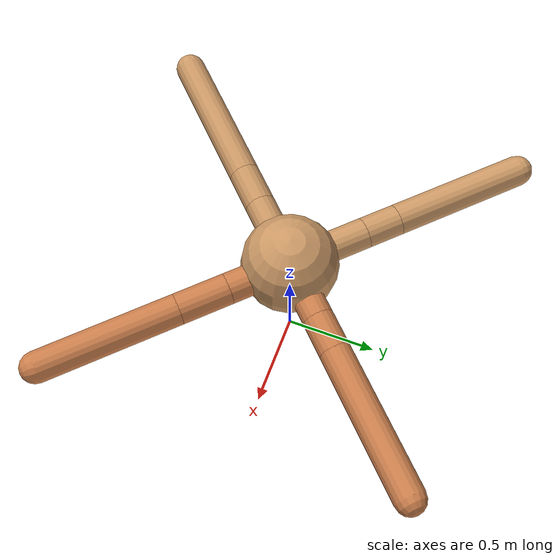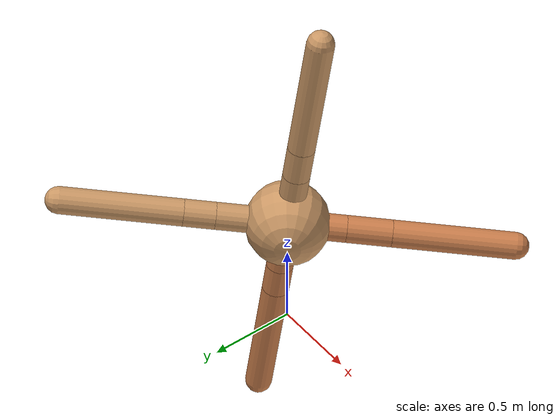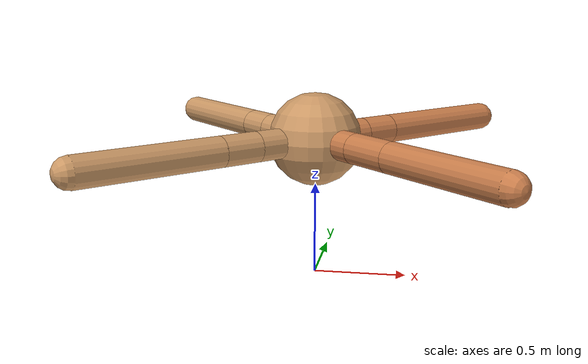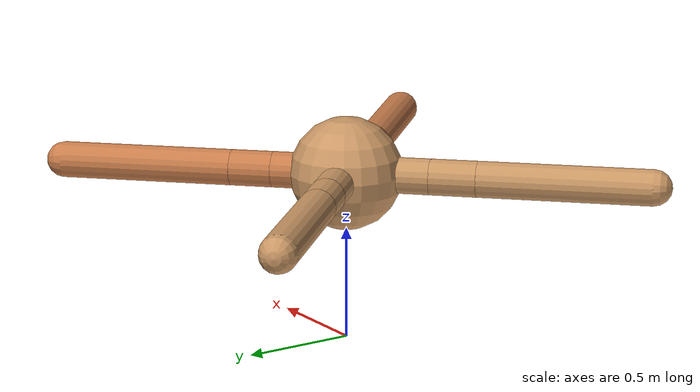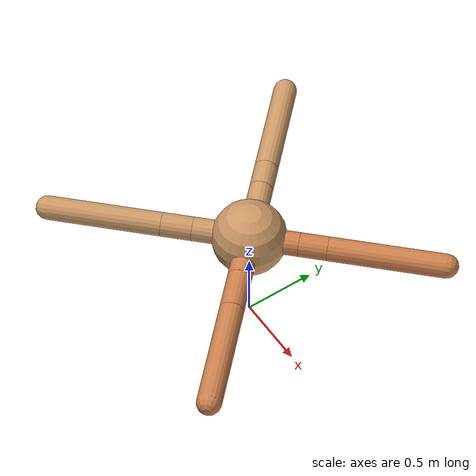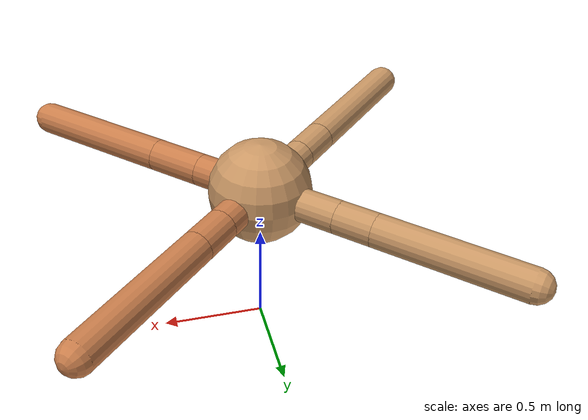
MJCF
<mujoco model="ant">
  <compiler angle="degree" coordinate="local" inertiafromgeom="true" />
  <option integrator="RK4" timestep="0.01" />
  <custom>
    <numeric data="0.0 0.0 0.55 1.0 0.0 0.0 0.0 0.0 1.0 0.0 -1.0 0.0 -1.0 0.0 1.0" name="init_qpos" />
  </custom>
  <default>
    <joint armature="1" damping="1" limited="true" />
    <geom conaffinity="0" condim="3" density="5.0" friction="1.5 0.1 0.1" margin="0.01" rgba="0.8 0.6 0.4 1" />
  </default>
  <worldbody>
    <body name="torso" pos="0 0 0.75">
      <geom name="torso_geom" pos="0 0 0" size="0.25" type="sphere" />

      <body name="front_left_leg" pos="0 0 0">
        <geom fromto="0.0 0.0 0.0 0.23251216308563324 0.23251216308563324 0.0" name="aux_1_geom" size="0.08" type="capsule" rgba=".8 .5 .3 1" />
        <body name="aux_1" pos="0.23251216308563324 0.23251216308563324 0.0">
          <joint axis="0 0 1" name="hip_1" pos="0.0 0.0 0.0" range="-40 40" type="hinge" />
          <geom fromto="0.0 0.0 0.0 0.1327447678530952 0.1327447678530952 0.0" name="left_leg_geom" size="0.08" type="capsule" rgba=".8 .5 .3 1" />
          <body pos="0.1327447678530952 0.1327447678530952 0.0" name="front_left_foot">
            <joint axis="-1 1 0" name="ankle_1" pos="0.0 0.0 0.0" range="30 100" type="hinge" />
            <geom fromto="0.0 0.0 0.0 0.5443824154866468 0.5443824154866468 0.0" name="left_ankle_geom" size="0.08" type="capsule" rgba=".8 .5 .3 1" />
          </body>
        </body>
      </body>
      <body name="front_right_leg" pos="0 0 0">
        <geom fromto="0.0 0.0 0.0 -0.2947371063537209 0.2947371063537209 0.0" name="aux_2_geom" size="0.08" type="capsule" />
        <body name="aux_2" pos="-0.2947371063537209 0.2947371063537209 0.0">
          <joint axis="0 0 1" name="hip_2" pos="0.0 0.0 0.0" range="-40 40" type="hinge" />
          <geom fromto="0.0 0.0 0.0 -0.131311883003056 0.131311883003056 0.0" name="right_leg_geom" size="0.08" type="capsule" />
          <body pos="-0.131311883003056 0.131311883003056 0.0" name="front_right_foot">
            <joint axis="1 1 0" name="ankle_2" pos="0.0 0.0 0.0" range="-100 -30" type="hinge" />
            <geom fromto="0.0 0.0 0.0 -0.5067423033149661 0.5067423033149661 0.0" name="right_ankle_geom" size="0.08" type="capsule" />
          </body>
        </body>
      </body>
      <body name="left_back_leg" pos="0 0 0">
        <geom fromto="0.0 0.0 0.0 -0.26351703721544173 -0.26351703721544173 0.0" name="aux_3_geom" size="0.08" type="capsule" />
        <body name="aux_3" pos="-0.26351703721544173 -0.26351703721544173 0.0">
          <joint axis="0 0 1" name="hip_3" pos="0.0 0.0 0.0" range="-40 40" type="hinge" />
          <geom fromto="0.0 0.0 0.0 -0.14654592358308727 -0.14654592358308727 0.0" name="back_leg_geom" size="0.08" type="capsule" />
          <body pos="-0.14654592358308727 -0.14654592358308727 0.0" name="left_back_foot">
            <joint axis="-1 1 0" name="ankle_3" pos="0.0 0.0 0.0" range="-100 -30" type="hinge" />
            <geom fromto="0.0 0.0 0.0 -0.5404058127670267 -0.5404058127670267 0.0" name="third_ankle_geom" size="0.08" type="capsule" />
          </body>
        </body>
      </body>
      <body name="right_back_leg" pos="0 0 0">
        <geom fromto="0.0 0.0 0.0 0.2392804326310043 -0.2392804326310043 0.0" name="aux_4_geom" size="0.08" type="capsule" rgba=".8 .5 .3 1" />
        <body name="aux_4" pos="0.2392804326310043 -0.2392804326310043 0.0">
          <joint axis="0 0 1" name="hip_4" pos="0.0 0.0 0.0" range="-40 40" type="hinge" />
          <geom fromto="0.0 0.0 0.0 0.18719199346033202 -0.18719199346033202 0.0" name="rightback_leg_geom" size="0.08" type="capsule" rgba=".8 .5 .3 1" />
          <body pos="0.18719199346033202 -0.18719199346033202 0.0" name="right_back_foot">
            <joint axis="1 1 0" name="ankle_4" pos="0.0 0.0 0.0" range="30 100" type="hinge" />
            <geom fromto="0.0 0.0 0.0 0.513346350748526 -0.513346350748526 0.0" name="fourth_ankle_geom" size="0.08" type="capsule" rgba=".8 .5 .3 1" />
          </body>
        </body>
      </body>
    </body>
  </worldbody>
  <actuator>
    <motor ctrllimited="true" ctrlrange="-1.0 1.0" joint="hip_4" gear="150" />
    <motor ctrllimited="true" ctrlrange="-1.0 1.0" joint="ankle_4" gear="150" />
    <motor ctrllimited="true" ctrlrange="-1.0 1.0" joint="hip_1" gear="150" />
    <motor ctrllimited="true" ctrlrange="-1.0 1.0" joint="ankle_1" gear="150" />
    <motor ctrllimited="true" ctrlrange="-1.0 1.0" joint="hip_2" gear="150" />
    <motor ctrllimited="true" ctrlrange="-1.0 1.0" joint="ankle_2" gear="150" />
    <motor ctrllimited="true" ctrlrange="-1.0 1.0" joint="hip_3" gear="150" />
    <motor ctrllimited="true" ctrlrange="-1.0 1.0" joint="ankle_3" gear="150" />
  </actuator>
</mujoco>
